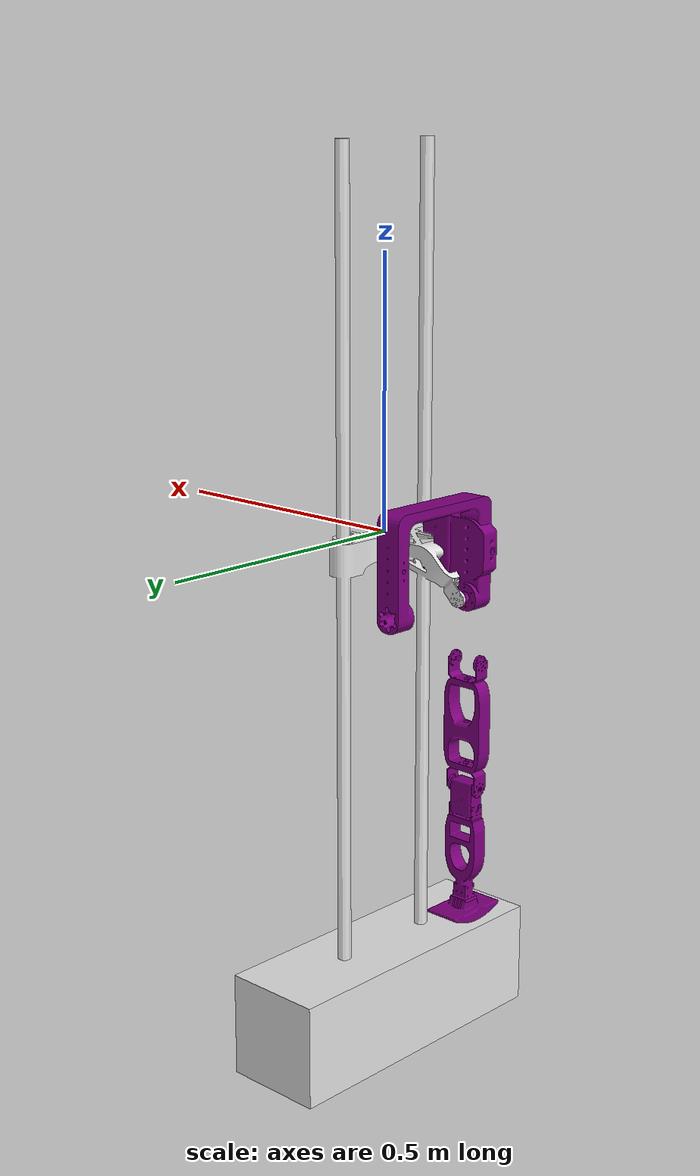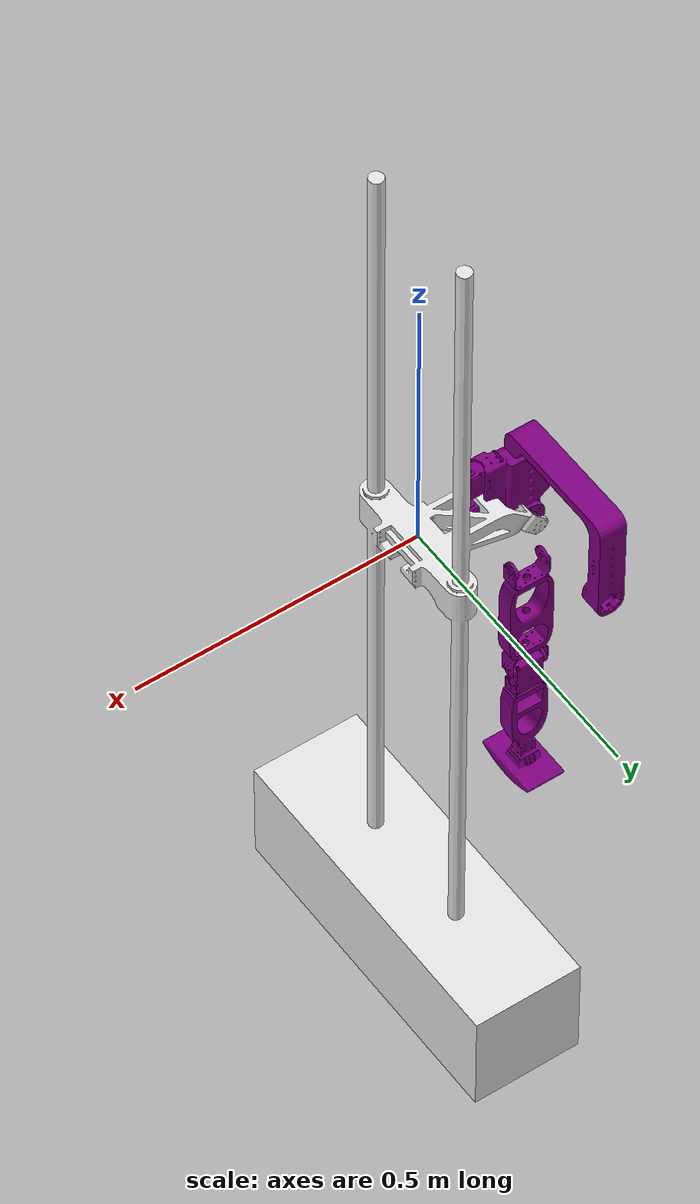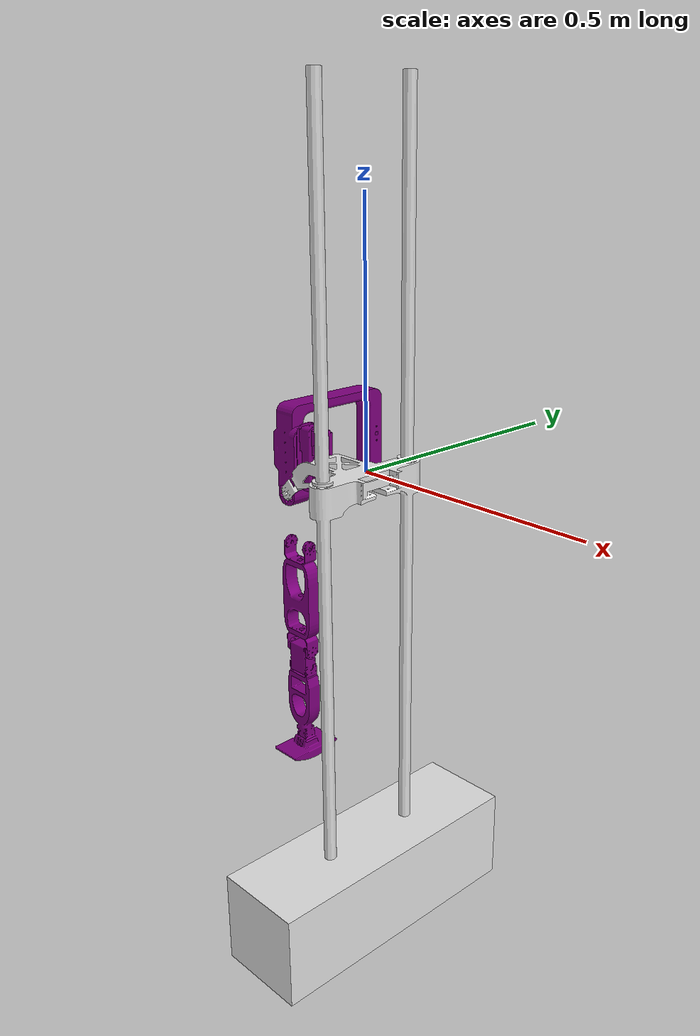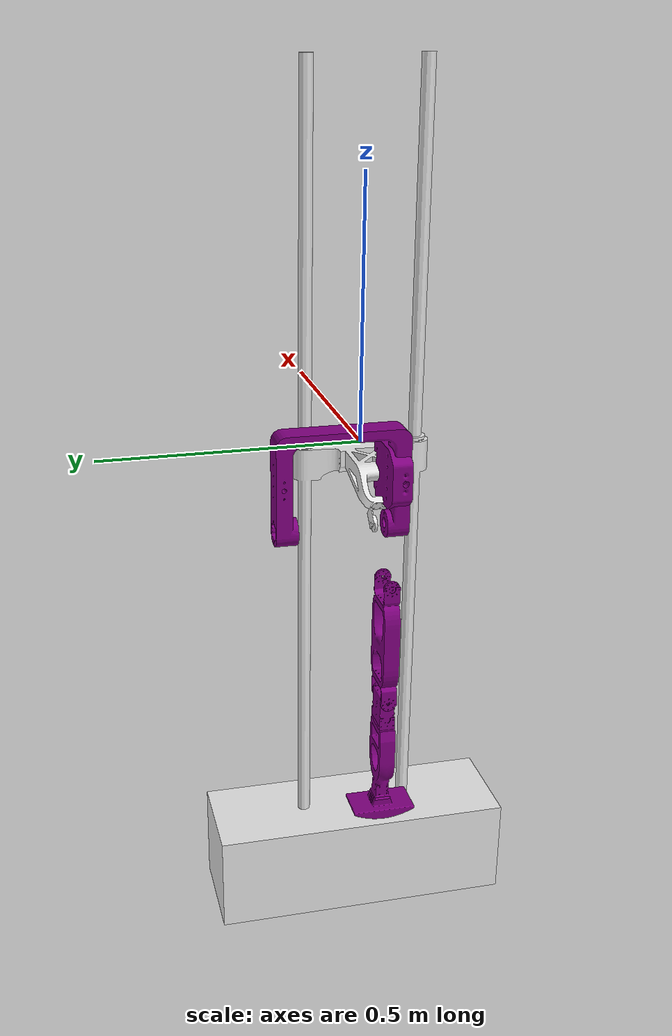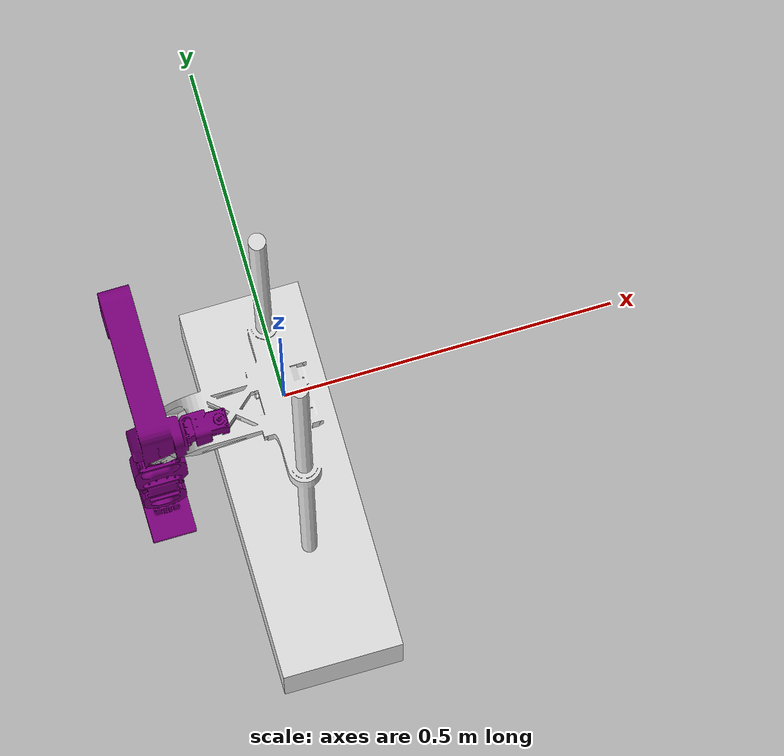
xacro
<?xml version="1.0"?>
<robot name="pata_izq" xmlns:xacro="http://www.ros.org/wiki/xacro">
  <link name="world" />
  <joint name="world_to_base" type="fixed">
    <parent link="world" />
    <child link="Base_link" />
    <origin xyz="0 0 0" rpy="0 1.57079632679 0" />
  </joint>

  <xacro:include filename="$(find robot_description)/urdf/urdf_izq/Pata_Izq_Robo_Parcial_URDF_V2.5.urdf" />
</robot>

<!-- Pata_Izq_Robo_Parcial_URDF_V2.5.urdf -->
<robot
  name="Pata_Izq_Robo_Parcial_URDF_V2.5">

  <!-- ==================== BASE ==================== -->

  <link
    name="Base_link">

    <inertial>
      <origin
        xyz="0.82792 3.4577E-07 -0.0010927"
        rpy="0 0 0" />

      <mass
        value="25.798" />

      <inertia
        ixx="0.79521"
        ixy="-3.8562E-09"
        ixz="8.6544E-05"
        iyy="1.4694"
        iyz="7.4799E-09"
        izz="2.1148" />
    </inertial>

    <visual>
      <origin
        xyz="0 0 0"
        rpy="0 0 0" />

      <geometry>
        <mesh
          filename="package://robot_description/meshes/meshes_izq/Base_link.STL" />
      </geometry>

      <material
        name="">
        <color
          rgba="0.89412 0.89412 0.89412 1" />
      </material>
    </visual>

    <collision>
      <origin
        xyz="0 0 0"
        rpy="0 0 0" />

      <geometry>
        <mesh
          filename="package://robot_description/meshes/meshes_izq/Base_link.STL" />
      </geometry>
    </collision>

  </link>

  <!-- ==================== LEFT HIP ROLL ==================== -->

  <joint
    name="Left_Hip_Roll_Joint"
    type="revolute">

    <origin
      xyz="0.083749 0 -0.2004"
      rpy="1.5708 0 0" />

    <parent
      link="Base_link" />

    <child
      link="Left_Hip_Roll_Link" />

    <axis
      xyz="0 0 -1" />

    <limit
      lower="-0.34907"
      upper="2.2689"
      effort="100"
      velocity="100" />

  </joint>

  <link
    name="Left_Hip_Roll_Link">

    <inertial>
      <origin
        xyz="0.059425 -4.4506E-05 -0.00014451"
        rpy="0 0 0" />

      <mass
        value="0.19411" />

      <inertia
        ixx="5.2459E-05"
        ixy="8.2367E-08"
        ixz="-8.2367E-08"
        iyy="8.9433E-05"
        iyz="-6.4685E-10"
        izz="8.9433E-05" />
    </inertial>

    <visual>
      <origin
        xyz="0 0 0"
        rpy="0 0 0" />

      <geometry>
        <mesh
          filename="package://robot_description/meshes/meshes_izq/Left_Hip_Roll_Link.STL" />
      </geometry>

      <material
        name="">
        <color
          rgba="0.5020 0 0.5020 1" />
      </material>
    </visual>

    <collision>
      <origin
        xyz="0 0 0"
        rpy="0 0 0" />

      <geometry>
        <mesh
          filename="package://robot_description/meshes/meshes_izq/Left_Hip_Roll_Link.STL" />
      </geometry>
    </collision>

  </link>

  <!-- ==================== LEFT HIP PITCH ==================== -->

  <joint
    name="Left_Hip_Pitch_Joint"
    type="revolute">

    <origin
      xyz="0.11885 0 0"
      rpy="-1.5708 0 0" />

    <parent
      link="Left_Hip_Roll_Link" />

    <child
      link="Left_Hip_Pitch_Link" />

    <axis
      xyz="0 0 1" />

    <limit
      lower="-2.0071"
      upper="2.0071"
      effort="100"
      velocity="100" />

  </joint>

  <link
    name="Left_Hip_Pitch_Link">

    <inertial>
      <origin
        xyz="0.12138 9.9994E-05 -0.00049995"
        rpy="0 0 0" />

      <mass
        value="0.21755" />

      <inertia
        ixx="0.00017367"
        ixy="7.9209E-10"
        ixz="-8.4058E-09"
        iyy="0.00053617"
        iyz="-3.2733E-09"
        izz="0.00039504" />
    </inertial>

    <visual>
      <origin
        xyz="0 0 0"
        rpy="0 0 0" />

      <geometry>
        <mesh
          filename="package://robot_description/meshes/meshes_izq/Left_Hip_Pitch_Link.STL" />
      </geometry>

      <material
        name="">
        <color
          rgba="0.5020 0 0.5020 1" />
      </material>
    </visual>

    <collision>
      <origin
        xyz="0 0 0"
        rpy="0 0 0" />

      <geometry>
        <mesh
          filename="package://robot_description/meshes/meshes_izq/Left_Hip_Pitch_Link.STL" />
      </geometry>
    </collision>

  </link>

  <!-- ==================== LEFT KNEE ==================== -->

  <joint
    name="Left_Knee_Joint"
    type="revolute">

    <origin
      xyz="0.23605 0 0"
      rpy="3.1416 0 0" />

    <parent
      link="Left_Hip_Pitch_Link" />

    <child
      link="Left_Knee_Link" />

    <axis
      xyz="0 0 -1" />

    <limit
      lower="-2.0071"
      upper="2.0071"
      effort="100"
      velocity="100" />

  </joint>

  <link
    name="Left_Knee_Link">

    <inertial>
      <origin
        xyz="0.14492 -0.00076982 0.00070842"
        rpy="0 0 0" />

      <mass
        value="0.38813" />

      <inertia
        ixx="0.00026487"
        ixy="-8.2767E-07"
        ixz="-9.197E-08"
        iyy="0.00042734"
        iyz="-1.1665E-09"
        izz="0.00042054" />
    </inertial>

    <visual>
      <origin
        xyz="0 0 0"
        rpy="0 0 0" />

      <geometry>
        <mesh
          filename="package://robot_description/meshes/meshes_izq/Left_Knee_Link.STL" />
      </geometry>

      <material
        name="">
        <color
          rgba="0.5020 0 0.5020 1" />
      </material>
    </visual>

    <collision>
      <origin
        xyz="0 0 0"
        rpy="0 0 0" />

      <geometry>
        <mesh
          filename="package://robot_description/meshes/meshes_izq/Left_Knee_Link.STL" />
      </geometry>
    </collision>

  </link>

</robot>
